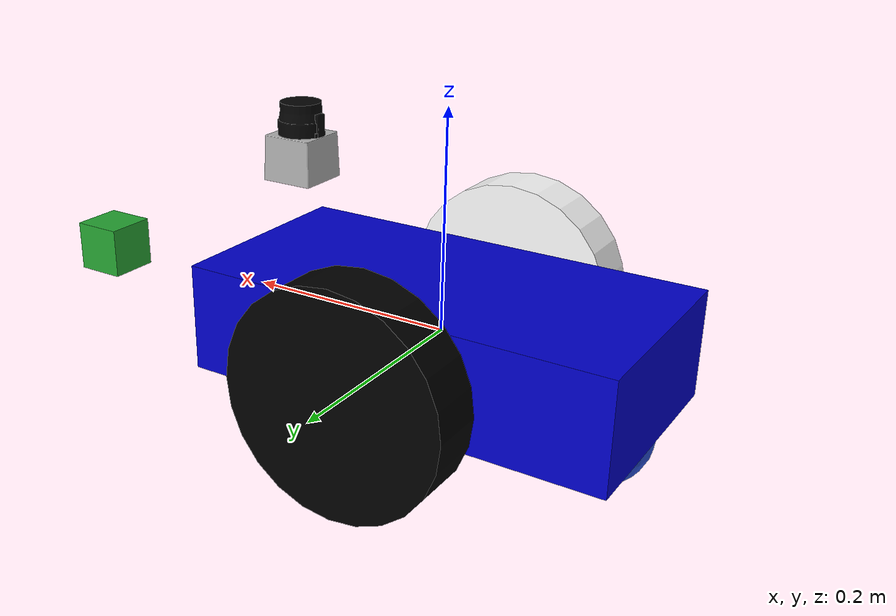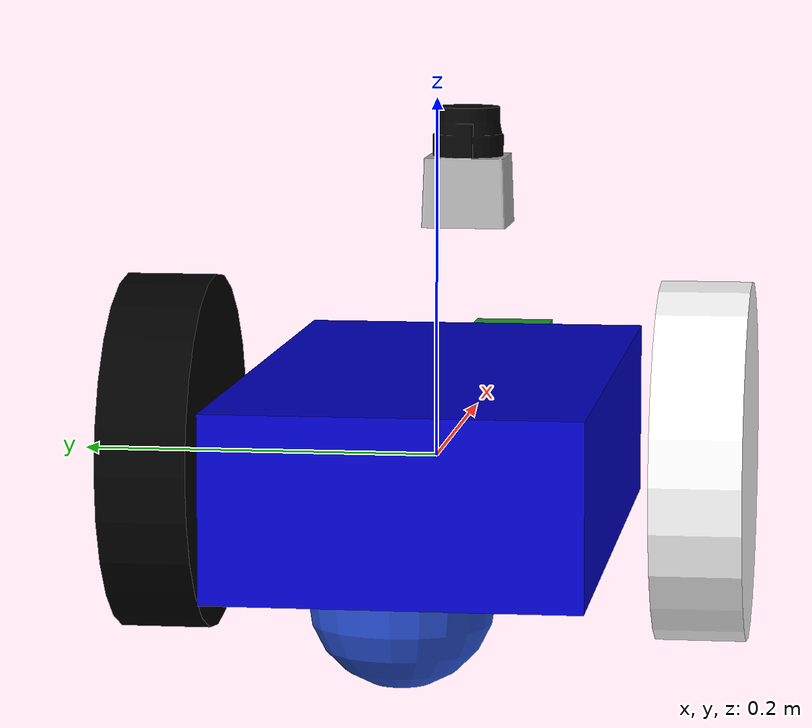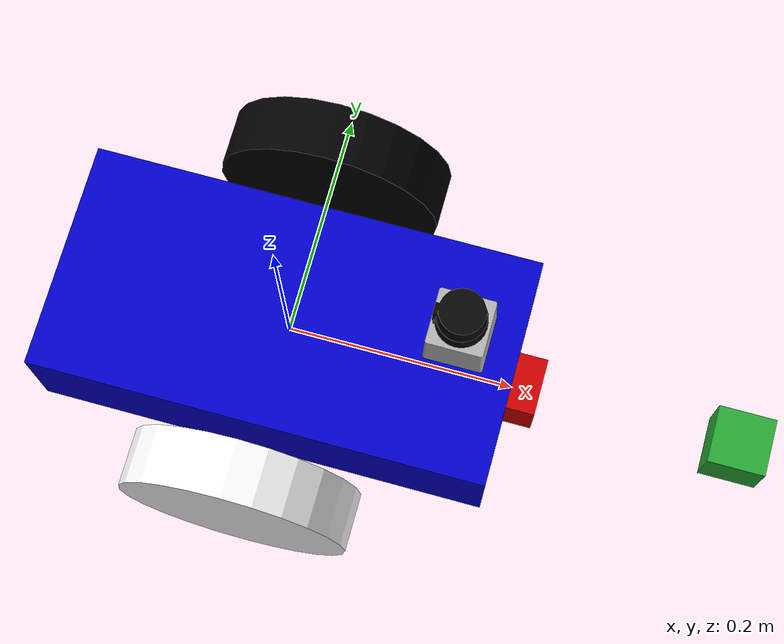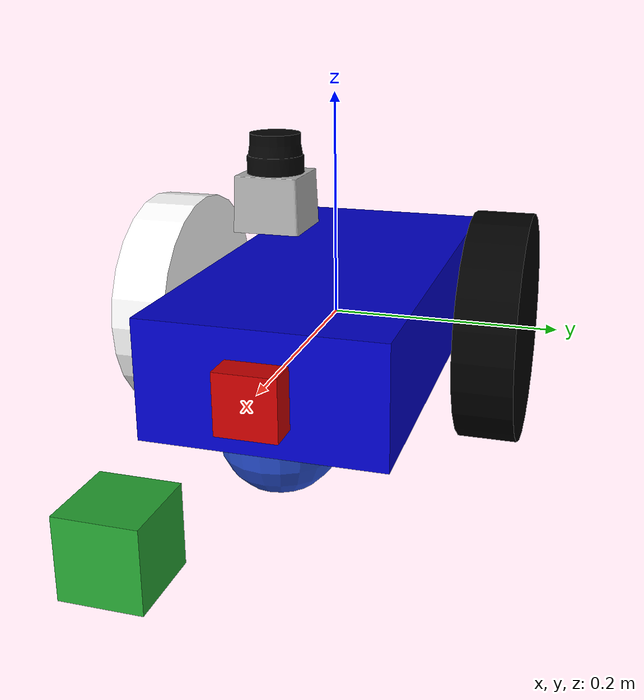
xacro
<?xml version='1.0'?>

<robot name="slam_bot" xmlns:xacro="http://www.ros.org/wiki/xacro">

<xacro:include filename="$(find slam_project)/urdf/slam_bot.gazebo"/>

        <material name="blue">
         <color rgba="0 0 0.8 1"/>
        </material>

        <material name="black">
         <color rgba="0 0 0 1"/>
        </material>

        <material name="red">
         <color rgba="0.8 0 0 1"/>
        </material>

        <material name="white">
         <color rgba="1 1 1 1"/>
        </material>

  <link name="robot_footprint"></link>

      <joint name="robot_footprint_joint" type="fixed">
        <origin xyz="0 0 0" rpy="0 0 0" />
        <parent link="robot_footprint"/>
        <child link="chassis" />
      </joint>

  <link name='chassis'>
    <pose>0 0 0.1 0 0 0</pose>

        <inertial>
            <mass value="15.0"/>
            <origin xyz="0.0 0 0" rpy=" 0 0 0"/>
            <inertia
                ixx="0.1" ixy="0" ixz="0"
                iyy="0.1" iyz="0"
                izz="0.1"
            />
        </inertial>

        <collision name='collision'>
            <origin xyz="0 0 0" rpy=" 0 0 0"/>
            <geometry>
              <box size=".4 .2 .1"/>
            </geometry>
        </collision>

        <visual>
            <origin xyz="0 0 0" rpy=" 0 0 0"/>
            <geometry>
              <box size=".4 .2 .1"/>
            </geometry>
                <material name="blue"/>
        </visual>

        <collision name='back_caster_collision'>
          <origin xyz="-0.15 0 -0.05" rpy=" 0 0 0"/>
          <geometry>
            <sphere radius="0.05"/>
          </geometry>
          <surface>
            <friction>
              <ode>
                <mu>0</mu>
                <mu2>0</mu2>
                <slip1>1.0</slip1>
                <slip2>1.0</slip2>
              </ode>
            </friction>
          </surface>
        </collision>

        <visual name='back_caster_visual'>
          <origin xyz="-0.15 0 -0.05" rpy=" 0 0 0"/>
          <geometry>
            <sphere radius="0.05"/>
          </geometry>
        </visual>

        <collision name='front_caster_collision'>
          <origin xyz="0.15 0 -0.05" rpy=" 0 0 0"/>
          <geometry>
            <sphere radius="0.05"/>
          </geometry>
          <surface>
            <friction>
              <ode>
                <mu>0</mu>
                <mu2>0</mu2>
                <slip1>1.0</slip1>
                <slip2>1.0</slip2>
              </ode>
            </friction>
          </surface>
        </collision>

        <visual>
          <origin xyz="0.15 0 -0.05" rpy=" 0 0 0"/>
          <geometry>
            <sphere radius="0.05"/>
          </geometry>
        </visual>

  </link>

    <link name="wheel_right_link">
      <visual>
        <origin rpy="0 1.5707 1.5707" xyz="0 0 0"/>
        <geometry>
          <cylinder length="0.05" radius="0.1"/>
        </geometry>
        <material name="white"/>
      </visual>

      <inertial>
            <mass value="5.0"/>
            <origin rpy="0 1.5707 1.5707" xyz="0 0 0"/>
            <inertia
                ixx="0.1" ixy="0" ixz="0"
                iyy="0.1" iyz="0"
                izz="0.1"
            />
      </inertial>

        <collision name='col_right_wheel'>
            <origin rpy="0 1.5707 1.5707" xyz="0 0 0"/>
            <geometry>
              <cylinder length="0.05" radius="0.1"/>
            </geometry>
        </collision>

    </link>

   <link name="wheel_left_link">
     <visual>
       <origin rpy="0 1.5707 1.5707" xyz="0 0 0"/>

       <geometry>
         <cylinder length="0.05" radius="0.1"/>
       </geometry>
       <material name="black"/>

     </visual>

      <inertial>
            <mass value="5.0"/>
            <origin rpy="0 1.5707 1.5707" xyz="0 0 0"/>
            <inertia
                ixx="0.1" ixy="0" ixz="0"
                iyy="0.1" iyz="0"
                izz="0.1"
            />
      </inertial>

        <collision name='col_left_wheel'>
            <origin rpy="0 1.5707 1.5707" xyz="0 0 0"/>
            <geometry>
              <cylinder length="0.05" radius="0.1"/>
            </geometry>
        </collision>

   </link>

   <link name="camera_link">

   <imageTopicName>/rgb/image_raw</imageTopicName>

     <visual>
       <origin rpy="0 0 0" xyz="0 0 0"/>

       <geometry>
         <box size="0.05 0.05 0.05"/>
       </geometry>
       <material name="red"/>
     </visual>

      <inertial>
            <mass value="0.1"/>
            <origin rpy="0 0 0" xyz="0 0 0"/>
            <inertia
                ixx="0.1" ixy="0" ixz="0"
                iyy="0.1" iyz="0"
                izz="0.1"
            />
      </inertial>

        <collision name='col_camera'>
            <origin rpy="0 0 0" xyz="0 0 0"/>
            <geometry>
              <box size="0.05 0.05 0.05"/>
            </geometry>
        </collision>

    </link>

   <joint name="camera_joint" type="fixed">

      <parent link="chassis"/>

      <child link="camera_link"/>

      <origin rpy="0 0 0" xyz="0.2 0 0"/>

   </joint>

   <link name="camera_rgbd_frame">

   <imageTopicName>/camera_rgbd_frame</imageTopicName>

     <visual>
       <origin rpy="0 0 0" xyz="0 0 0"/>

       <geometry>
         <box size="0.05 0.05 0.05"/>
       </geometry>
       <material name="green"/>
     </visual>

      <inertial>
            <mass value="0.01"/>
            <origin rpy="0 0 0" xyz="0 0 0"/>
            <inertia
                ixx="0.01" ixy="0" ixz="0"
                iyy="0.01" iyz="0"
                izz="0.01"
            />
      </inertial>

        <collision name='col_rgbd'>
            <origin rpy="0 0 0" xyz="0 0 0"/>
            <geometry>
              <box size="0.05 0.05 0.05"/>
            </geometry>
        </collision>

    </link>

   <joint name="camera_rgbd_joint" type="fixed">

      <parent link="camera_link"/>

      <child link="camera_rgbd_frame"/>

      <origin rpy="0 0 0" xyz="0.2 0 0"/>

   </joint>

   <link name="hokuyo">
      <topicName>/scan</topicName>

     <visual>
       <origin rpy="0 0 0" xyz="0 0 0"/>
       <geometry>
         <mesh filename="package://slam_project/meshes/hokuyo.dae"/>
       </geometry>
     </visual>

      <inertial>
            <mass value="0.1"/>
            <origin rpy="0 0 0" xyz="0 0 0"/>
            <inertia
                ixx="0.1" ixy="0" ixz="0"
                iyy="0.1" iyz="0"
                izz="0.1"
            />
      </inertial>

        <collision name='col_hokuyo'>
            <origin rpy="0 0 0" xyz="0 0 0"/>
            <geometry>
              <mesh filename="package://slam_project/meshes/hokuyo.dae"/>
            </geometry>
        </collision>

    </link>

   <joint name="hokuyo_joint" type="fixed">

      <parent link="chassis"/>

      <child link="hokuyo"/>

      <origin rpy="0 0 0" xyz="0.15 0 0.15"/>

      <axis xyz="0 0 1" rpy="0 0 0"/>

   </joint>

    <joint name="right_wheel_hinge" type="continuous">

      <parent link="chassis"/>

      <child link="wheel_right_link"/>

      <origin rpy="0 0 0" xyz="0 -0.15 0"/>

      <axis xyz="0 1 0" rpy="0 0 0"/>

      <limit effort="10000" velocity="1000"/>

      <joint_properties damping="1.0" friction="1.0"/>

   </joint>

   <joint name="left_wheel_hinge" type="continuous">

      <parent link="chassis"/>

      <child link="wheel_left_link"/>

      <origin rpy="0 0 0" xyz="0 0.15 0"/>

      <axis xyz="0 1 0" rpy="0 0 0"/>

      <limit effort="10000" velocity="1000"/>

      <joint_properties damping="1.0" friction="1.0"/>

   </joint>

</robot>
